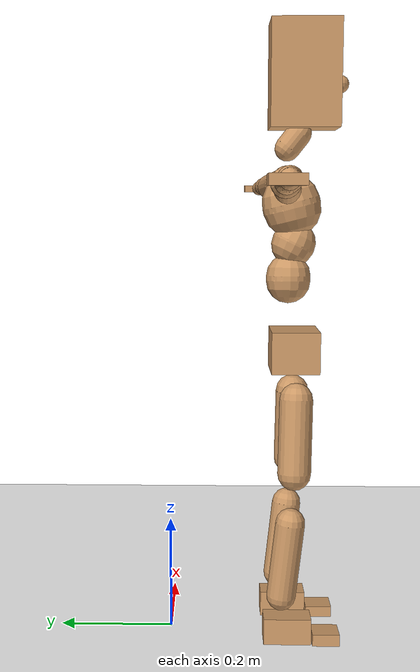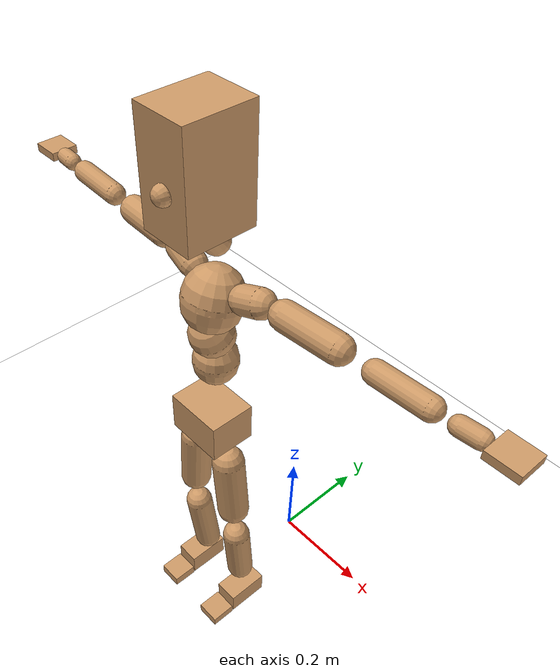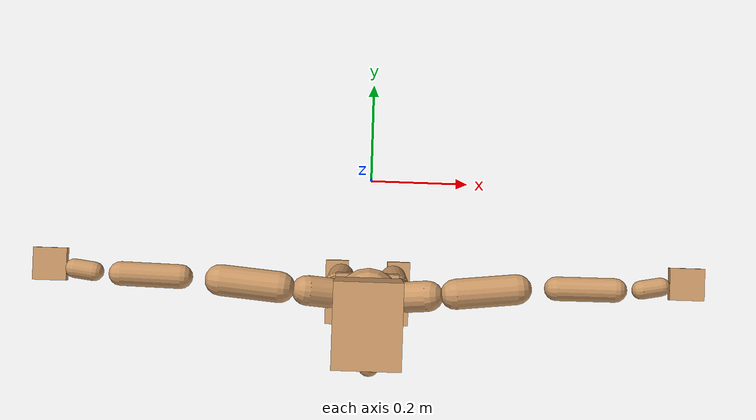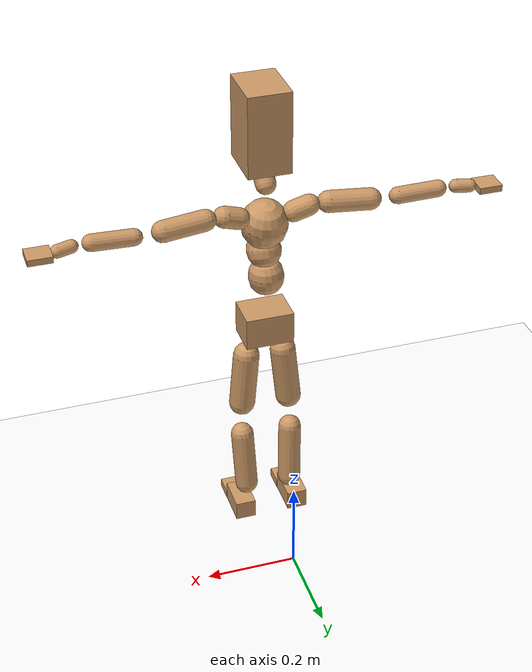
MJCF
<mujoco model="humanoid">
  <option integrator="implicitfast" />

  <visual>
    <global offwidth="1280" offheight="960" />
    <headlight active="1" ambient="0.34 0.34 0.34" diffuse="0.5 0.5 0.5" />
  </visual>

  <default>
    <joint damping="2" stiffness="2" armature="0.01" limited="true" solimplimit="0 .99 .01" />
    <geom condim="1" friction="0.7 0.005 0.0001" solimp=".99 .99 .003" solref="0.015 1" margin="0.001" rgba="0.8 0.6 .4 1" />
    <default class="smplcontact">
      <geom condim="3" friction="1. 0.005 0.0001" solref="0.015 1" solimp="0.98 0.98 0.001" priority="1" />
    </default>
    <default class="stiff_medium">
      <joint stiffness="10" />
    </default>
    <default class="stiff_medium_higher">
      <joint stiffness="50" />
    </default>
    <default class="stiff_high">
      <joint stiffness="100" />
    </default>
  </default>

  <asset>
    <texture type="skybox" builtin="gradient" rgb1="0.99 0.99 0.99" rgb2="0.608 0.828 0.892" width="100" />
    <texture builtin="flat" height="1278" mark="cross" markrgb="1 1 1" name="texgeom" random="0.01" rgb1="0.8 0.6 0.4" rgb2="0.8 0.6 0.4" type="cube" width="127" />
    <texture name="texplane" type="2d" builtin="checker" markrgb="1 1 1" rgb1="0.756 0.772 0.76" rgb2="0.6 0.6 0.6" width="100" height="100" />
    <material name="MatPlane" reflectance="0.5" texture="texplane" texrepeat="1 1" texuniform="true" />
    <material name="geom" texture="texgeom" texuniform="true" />
  </asset>

  <worldbody>
    <light name="tracking_light" pos="0 0 7" dir="0 0 -1" directional="true" cutoff="100" exponent="1" diffuse="1 1 1" specular="0.1 0.1 0.1" mode="trackcom" />
    <camera name="back" pos="0 3 2.4" xyaxes="-1 0 0 0 -1 2" mode="trackcom" />
    <camera name="side" pos="-3 0 2.4" xyaxes="0 -1 0 1 0 2" mode="trackcom" />
    <camera name="front_side" pos="-2.8 -2.8 0.8" xyaxes="0.5 -0.5 0 0.1 0.1 1" mode="trackcom" />
    <geom condim="3" name="floor" pos="0 0 0" rgba="1 1 1 1" size="100 100 .2" type="plane" material="MatPlane" />
    <body name="Pelvis" pos="-0.0018 -0.2233 0.523917" euler="90 0 0">
      <site name="Pelvis" size="0.01" />
      <freejoint name="Pelvis" />
      <geom type="box" pos="-0.0000 -0.0121 -0.0055" size="0.0539214 0.0364184 0.041866" quat="1.0000 0.0000 0.0000 0.0000" density="3165.830099" name="Pelvis" />
      <body name="L_Hip" pos="0.0390052 -0.051296 -0.00381633">
        <joint name="L_Hip_x" type="hinge" pos="0 0 0" axis="1 0 0" stiffness="10" range="-160.0 22.92" class="stiff_medium" damping="15" />
        <joint name="L_Hip_y" type="hinge" pos="0 0 0" axis="0 1 0" stiffness="10" range="-70.0 70.0" class="stiff_medium" damping="10" />
        <joint name="L_Hip_z" type="hinge" pos="0 0 0" axis="0 0 1" stiffness="10" range="-28.65 90.0" class="stiff_medium" damping="10" />
        <geom type="capsule" density="2040.816327" fromto="0.00387245 -0.0420919 -0.000505103 0.0153776 -0.16848 -0.00202041" size="0.0294397" name="L_Hip" />
        <body name="L_Knee" pos="0.01925 -0.210572 -0.00252551">
          <joint name="L_Knee_x" type="hinge" pos="0 0 0" axis="1 0 0" range="-5.16 171.89" damping="8" />
          <joint name="L_Knee_y" type="hinge" pos="0 0 0" axis="0 1 0" range="-4.58 6.88" damping="8" />
          <joint name="L_Knee_z" type="hinge" pos="0 0 0" axis="0 0 1" range="-6.88 4.58" damping="8" />
          <geom type="capsule" density="1234.567901" fromto="-0.00151531 -0.0446735 -0.00488266 -0.00611735 -0.178694 -0.0196429" size="0.0258974" name="L_Knee" />
          <body name="L_Ankle" pos="-0.00763266 -0.223368 -0.0245255">
            <joint name="L_Ankle_x" type="hinge" pos="0 0 0" axis="1 0 0" range="-45.84 45.84" class="stiff_medium" damping="6" />
            <joint name="L_Ankle_y" type="hinge" pos="0 0 0" axis="0 1 0" range="-74.48 22.92" class="stiff_medium" damping="3" />
            <joint name="L_Ankle_z" type="hinge" pos="0 0 0" axis="0 0 1" range="-4.58 4.58" class="stiff_medium" damping="6" />
            <geom type="box" pos="0.0130765 -0.0134133 0.0135816" size="0.023121 0.0222115 0.0406891" quat="1.0000 0.0000 0.0000 0.0000" density="449.071558" name="L_Ankle" class="smplcontact" />
            <body name="L_Toe" pos="0.0148163 -0.0313164 0.0669542">
              <joint name="L_Toe_x" type="hinge" pos="0 0 0" axis="1 0 0" range="-91.67 22.92" />
              <joint name="L_Toe_y" type="hinge" pos="0 0 0" axis="0 1 0" range="-4.58 4.58" />
              <joint name="L_Toe_z" type="hinge" pos="0 0 0" axis="0 0 1" range="-4.58 4.58" />
              <geom type="box" pos="-0.00168368 0.00308674 0.0139184" size="0.0228816 0.0095739 0.0237433" quat="1.0000 0.0000 0.0000 0.0000" density="423.206892" name="L_Toe" class="smplcontact" />
            </body>
          </body>
        </body>
      </body>
      <body name="R_Hip" pos="-0.0379949 -0.0507909 -0.00241327">
        <joint name="R_Hip_x" type="hinge" pos="0 0 0" axis="1 0 0" stiffness="10" range="-160.0 22.92" class="stiff_medium" damping="15" />
        <joint name="R_Hip_y" type="hinge" pos="0 0 0" axis="0 1 0" stiffness="10" range="-70.0 70.0" class="stiff_medium" damping="10" />
        <joint name="R_Hip_z" type="hinge" pos="0 0 0" axis="0 0 1" stiffness="10" range="-90.0 28.65" class="stiff_medium" damping="10" />
        <geom type="capsule" density="2040.816327" fromto="-0.00432143 -0.0429337 -0.00101021 -0.0171735 -0.171791 -0.0039847" size="0.0290089" name="R_Hip" />
        <body name="R_Knee" pos="-0.0214949 -0.214725 -0.0049949">
          <joint name="R_Knee_x" type="hinge" pos="0 0 0" axis="1 0 0" range="-5.16 171.89" damping="8" />
          <joint name="R_Knee_y" type="hinge" pos="0 0 0" axis="0 1 0" range="-6.88 4.58" damping="8" />
          <joint name="R_Knee_z" type="hinge" pos="0 0 0" axis="0 0 1" range="-4.58 6.88" damping="8" />
          <geom type="capsule" density="1234.567901" fromto="0.00179592 -0.0447296 -0.00477041 0.00707144 -0.178862 -0.0189694" size="0.0258974" name="R_Knee" />
          <body name="R_Ankle" pos="0.00886736 -0.223592 -0.0237398">
            <joint name="R_Ankle_x" type="hinge" pos="0 0 0" axis="1 0 0" range="-45.84 45.84" class="stiff_medium" damping="6" />
            <joint name="R_Ankle_y" type="hinge" pos="0 0 0" axis="0 1 0" range="-22.92 74.48" class="stiff_medium" damping="3" />
            <joint name="R_Ankle_z" type="hinge" pos="0 0 0" axis="0 0 1" range="-4.58 4.58" class="stiff_medium" damping="6" />
            <geom type="box" pos="-0.011898 -0.00976532 0.0143674" size="0.023121 0.0228816 0.0414071" quat="1.0000 0.0000 0.0000 0.0000" density="434.700981" name="R_Ankle" class="smplcontact" />
            <body name="R_Toe" pos="-0.0142551 -0.0269949 0.0691991">
              <joint name="R_Toe_x" type="hinge" pos="0 0 0" axis="1 0 0" range="-91.67 22.92" />
              <joint name="R_Toe_y" type="hinge" pos="0 0 0" axis="0 1 0" range="-4.58 4.58" />
              <joint name="R_Toe_z" type="hinge" pos="0 0 0" axis="0 0 1" range="-4.58 4.58" />
              <geom type="box" pos="0.00235715 0.00252551 0.0127398" size="0.0229295 0.0103398 0.0235997" quat="1.0000 0.0000 0.0000 0.0000" density="407.384095" name="R_Toe" class="smplcontact" />
            </body>
          </body>
        </body>
      </body>
      <body name="Torso" pos="-0.0016117 0.07027 -0.0172129">
        <joint name="Torso_x" type="hinge" pos="0 0 0" axis="1 0 0" range="-25.78 57.3" class="stiff_medium" damping="15" />
        <joint name="Torso_y" type="hinge" pos="0 0 0" axis="0 1 0" range="-57.3 57.3" class="stiff_high" damping="20" />
        <joint name="Torso_z" type="hinge" pos="0 0 0" axis="0 0 1" range="-34.38 34.38" class="stiff_high" damping="20" />
        <geom type="capsule" density="2040.816327" fromto="0.0016117 0.0391965 0.00032234 0.00193404 0.0478997 0.000386807" size="0.0387891" name="Torso" />
        <body name="Spine" pos="0.00354573 0.0871606 0.000709147">
          <joint name="Spine_x" type="hinge" pos="0 0 0" axis="1 0 0" stiffness="10" range="-25.78 57.3" class="stiff_medium" damping="15" />
          <joint name="Spine_y" type="hinge" pos="0 0 0" axis="0 1 0" stiffness="10" range="-57.3 57.3" class="stiff_high" damping="8" />
          <joint name="Spine_z" type="hinge" pos="0 0 0" axis="0 0 1" stiffness="20" range="-34.38 34.38" class="stiff_high" damping="12" />
          <geom type="capsule" density="2040.816327" fromto="0.000451275 0.0153434 0.00734934 0.000515743 0.0187602 0.00902551" size="0.038083" name="Spine" />
          <body name="Chest" pos="0.000967019 0.0341035 0.0163748">
            <joint name="Chest_x" type="hinge" pos="0 0 0" axis="1 0 0" stiffness="10" range="-25.78 57.3" class="stiff_medium" damping="15" />
            <joint name="Chest_y" type="hinge" pos="0 0 0" axis="0 1 0" stiffness="10" range="-57.3 57.3" class="stiff_high" damping="8" />
            <joint name="Chest_z" type="hinge" pos="0 0 0" axis="0 0 1" stiffness="20" range="-34.38 34.38" class="stiff_high" damping="12" />
            <geom type="capsule" density="2040.816327" fromto="-0.000580211 0.0439671 -0.0111529 -0.000644679 0.0537018 -0.0136672" size="0.0505419" name="Chest" />
            <body name="Neck" pos="-0.0018051 0.137897 -0.0276567">
              <joint name="Neck_x" type="hinge" pos="0 0 0" axis="1 0 0" range="-28.65 57.3" class="stiff_medium_higher" damping="10" />
              <joint name="Neck_y" type="hinge" pos="0 0 0" axis="0 1 0" range="-40.11 40.11" class="stiff_medium_higher" damping="10" />
              <joint name="Neck_z" type="hinge" pos="0 0 0" axis="0 0 1" range="-40.11 40.11" class="stiff_medium_higher" damping="10" />
              <geom type="capsule" density="1000" fromto="0.000644679 0.00838083 0.00664019 0.00264318 0.0335233 0.0264963" size="0.0219923" name="Neck" />
              <body name="Head" pos="0.00449245 0.0561557 0.0443198">
                <joint name="Head_x" type="hinge" pos="0 0 0" axis="1 0 0" range="-28.65 57.3" class="stiff_medium_higher" damping="2" />
                <joint name="Head_y" type="hinge" pos="0 0 0" axis="0 1 0" range="-40.11 40.11" class="stiff_medium_higher" damping="2" />
                <joint name="Head_z" type="hinge" pos="0 0 0" axis="0 0 1" range="-40.11 40.11" class="stiff_medium_higher" damping="2" />
                <geom type="box" pos="-0.00362852 0.0756806 -0.0100216" size="0.0473001 0.0900732 0.0593203" quat="1.0000 0.0000 0.0000 0.0000" density="1018.069894" name="Head" />
                <geom type="capsule" name="nose" size="0.0156106 0.0078053" pos="0 0.0604753 0.0431967" quat="1 0 0 0" mass="0" contype="0" conaffinity="0" />
              </body>
            </body>
            <body name="L_Thorax" pos="0.0468356 0.0723337 -0.0202677">
              <joint name="L_Thorax_x" type="hinge" pos="0 0 0" axis="1 0 0" range="-10.89 4.58" class="stiff_medium_higher" damping="20" />
              <joint name="L_Thorax_y" type="hinge" pos="0 0 0" axis="0 1 0" range="-28.65 17.19" class="stiff_medium_higher" damping="20" />
              <joint name="L_Thorax_z" type="hinge" pos="0 0 0" axis="0 0 1" range="-31.51 40.11" class="stiff_medium_higher" damping="20" />
              <geom type="capsule" density="1000" fromto="0.0108174 0.0036256 -0.00106985 0.0432695 0.0145024 -0.00421996" size="0.0235415" name="L_Thorax" />
              <body name="L_Shoulder" pos="0.0540868 0.018128 -0.00528981">
                <joint name="L_Shoulder_x" type="hinge" pos="0 0 0" axis="1 0 0" range="-97.4 97.4" class="stiff_medium" damping="6" />
                <joint name="L_Shoulder_y" type="hinge" pos="0 0 0" axis="0 1 0" range="-108.86 80.21" class="stiff_medium" damping="6" />
                <joint name="L_Shoulder_z" type="hinge" pos="0 0 0" axis="0 0 1" range="-97.4 85.94" class="stiff_medium" damping="6" />
                <geom type="capsule" density="1000" fromto="0.0308473 -0.00154534 -0.00326898 0.123449 -0.00606248 -0.0130759" size="0.0233608" name="L_Shoulder" />
                <body name="L_Elbow" pos="0.154296 -0.00760782 -0.0163449">
                  <joint name="L_Elbow_x" type="hinge" pos="0 0 0" axis="1 0 0" range="-17.19 4.58" damping="5" />
                  <joint name="L_Elbow_y" type="hinge" pos="0 0 0" axis="0 1 0" range="-180.0 17.19" damping="5" />
                  <joint name="L_Elbow_z" type="hinge" pos="0 0 0" axis="0 0 1" range="-100.84 4.58" damping="5" />
                  <geom type="capsule" density="1000" fromto="0.0295992 0.00106985 -0.000118872 0.118516 0.0042794 -0.000534925" size="0.0183" name="L_Elbow" />
                  <body name="L_Wrist" pos="0.148115 0.00534925 -0.000713233">
                    <joint name="L_Wrist_x" type="hinge" pos="0 0 0" axis="1 0 0" range="-180.0 22.92" />
                    <joint name="L_Wrist_y" type="hinge" pos="0 0 0" axis="0 1 0" range="-17.19 17.19" />
                    <joint name="L_Wrist_z" type="hinge" pos="0 0 0" axis="0 0 1" range="-22.92 22.92" />
                    <geom type="capsule" density="1000" fromto="0.00998526 -0.000950977 -0.00178308 0.039941 -0.00386335 -0.00713233" size="0.0143689" name="L_Wrist" class="smplcontact" />
                    <body name="L_Hand" pos="0.0499263 -0.00487376 -0.00885598">
                      <joint name="L_Hand_x" type="hinge" pos="0 0 0" axis="1 0 0" range="-17.19 17.19" />
                      <joint name="L_Hand_y" type="hinge" pos="0 0 0" axis="0 1 0" range="-51.57 51.57" />
                      <joint name="L_Hand_z" type="hinge" pos="0 0 0" axis="0 0 1" range="-91.67 91.67" />
                      <geom type="box" pos="0.029302 0.000594361 -0.00344729" size="0.0264334 0.00713927 0.0243097" quat="1.0000 0.0000 0.0000 0.0000" density="400.552564" name="L_Hand" class="smplcontact" />
                    </body>
                  </body>
                </body>
              </body>
            </body>
            <body name="R_Thorax" pos="-0.0486187 0.0706101 -0.0229423">
              <joint name="R_Thorax_x" type="hinge" pos="0 0 0" axis="1 0 0" range="-10.89 4.58" class="stiff_medium_higher" damping="20" />
              <joint name="R_Thorax_y" type="hinge" pos="0 0 0" axis="0 1 0" range="-17.19 28.65" class="stiff_medium_higher" damping="20" />
              <joint name="R_Thorax_z" type="hinge" pos="0 0 0" axis="0 0 1" range="-40.11 31.51" class="stiff_medium_higher" damping="20" />
              <geom type="capsule" density="1000" fromto="-0.0114117 0.00386335 -0.00106985 -0.0456469 0.0154534 -0.00433883" size="0.0230897" name="R_Thorax" />
              <body name="R_Shoulder" pos="-0.0570586 0.0193762 -0.00540868">
                <joint name="R_Shoulder_x" type="hinge" pos="0 0 0" axis="1 0 0" range="-97.4 97.4" class="stiff_medium" damping="6" />
                <joint name="R_Shoulder_y" type="hinge" pos="0 0 0" axis="0 1 0" range="-80.21 108.86" class="stiff_medium" damping="6" />
                <joint name="R_Shoulder_z" type="hinge" pos="0 0 0" axis="0 0 1" range="-85.94 97.4" class="stiff_medium" damping="6" />
                <geom type="capsule" density="1000" fromto="-0.0301341 -0.00160477 -0.00255575 -0.120655 -0.00635966 -0.0101636" size="0.0239934" name="R_Shoulder" />
                <body name="R_Elbow" pos="-0.150789 -0.007905 -0.0127193">
                  <joint name="R_Elbow_x" type="hinge" pos="0 0 0" axis="1 0 0" range="-17.19 4.58" damping="5" />
                  <joint name="R_Elbow_y" type="hinge" pos="0 0 0" axis="0 1 0" range="-17.19 180.0" damping="5" />
                  <joint name="R_Elbow_z" type="hinge" pos="0 0 0" axis="0 0 1" range="-4.58 100.84" damping="5" />
                  <geom type="capsule" density="1000" fromto="-0.0303718 0.000950977 -0.000653797 -0.121368 0.00368504 -0.00261519" size="0.0184356" name="R_Elbow" />
                  <body name="R_Wrist" pos="-0.15174 0.00463601 -0.00332842">
                    <joint name="R_Wrist_x" type="hinge" pos="0 0 0" axis="1 0 0" range="-180.0 22.92" />
                    <joint name="R_Wrist_y" type="hinge" pos="0 0 0" axis="0 1 0" range="-17.19 17.19" />
                    <joint name="R_Wrist_z" type="hinge" pos="0 0 0" axis="0 0 1" range="-22.92 22.92" />
                    <geom type="capsule" density="1000" fromto="-0.0100447 -0.000713233 -0.00124816 -0.0402382 -0.00291237 -0.00493319" size="0.0147304" name="R_Wrist" class="smplcontact" />
                    <body name="R_Hand" pos="-0.0502829 -0.0036256 -0.00612192">
                      <joint name="R_Hand_x" type="hinge" pos="0 0 0" axis="1 0 0" range="-17.19 17.19" />
                      <joint name="R_Hand_y" type="hinge" pos="0 0 0" axis="0 1 0" range="-51.57 51.57" />
                      <joint name="R_Hand_z" type="hinge" pos="0 0 0" axis="0 0 1" range="-91.67 91.67" />
                      <geom type="box" pos="-0.0274595 -0.000534925 -0.00469545" size="0.0257104 0.00741038 0.0246711" quat="1.0000 0.0000 0.0000 0.0000" density="403.679611" name="R_Hand" class="smplcontact" />
                    </body>
                  </body>
                </body>
              </body>
            </body>
          </body>
        </body>
      </body>
    </body>
  </worldbody>
  <actuator>
    <general name="L_Hip_x" joint="L_Hip_x" biastype="affine" gainprm="287.33006409732246" biasprm="-215.3247604770444 -180 -2.0" ctrllimited="true" ctrlrange="-1 1" forcerange="-360 360" />
    <general name="L_Hip_y" joint="L_Hip_y" biastype="affine" gainprm="219.9114857512855" biasprm="0.0 -180 -2.0" ctrllimited="true" ctrlrange="-1 1" forcerange="-360 360" />
    <general name="L_Hip_z" joint="L_Hip_z" biastype="affine" gainprm="186.3749841742145" biasprm="96.3683546488669 -180 -2.0" ctrllimited="true" ctrlrange="-1 1" forcerange="-360 360" />
    <general name="L_Knee_x" joint="L_Knee_x" biastype="affine" gainprm="278.10948965903646" biasprm="261.8988715665131 -180 -2.0" ctrllimited="true" ctrlrange="-1 1" forcerange="-360 360" />
    <general name="L_Knee_y" joint="L_Knee_y" biastype="affine" gainprm="18.001325905069514" biasprm="3.612831551628262 -180 -2.0" ctrllimited="true" ctrlrange="-1 1" forcerange="-360 360" />
    <general name="L_Knee_z" joint="L_Knee_z" biastype="affine" gainprm="18.001325905069514" biasprm="-3.612831551628262 -180 -2.0" ctrllimited="true" ctrlrange="-1 1" forcerange="-360 360" />
    <general name="L_Ankle_x" joint="L_Ankle_x" biastype="affine" gainprm="72.00530362027807" biasprm="0.0 -90 -2.0" ctrllimited="true" ctrlrange="-1 1" forcerange="-180 180" />
    <general name="L_Ankle_y" joint="L_Ankle_y" biastype="affine" gainprm="76.49778111491148" biasprm="-40.49512930477244 -90 -2.0" ctrllimited="true" ctrlrange="-1 1" forcerange="-180 180" />
    <general name="L_Ankle_z" joint="L_Ankle_z" biastype="affine" gainprm="7.1942471767206255" biasprm="0.0 -90 -2.0" ctrllimited="true" ctrlrange="-1 1" forcerange="-180 180" />
    <general name="L_Toe_x" joint="L_Toe_x" biastype="affine" gainprm="71.99902043497087" biasprm="-43.19689898685965 -72 -0.8" ctrllimited="true" ctrlrange="-1 1" forcerange="-144 144" />
    <general name="L_Toe_y" joint="L_Toe_y" biastype="affine" gainprm="5.755397741376501" biasprm="0.0 -72 -0.8" ctrllimited="true" ctrlrange="-1 1" forcerange="-144 144" />
    <general name="L_Toe_z" joint="L_Toe_z" biastype="affine" gainprm="5.755397741376501" biasprm="0.0 -72 -0.8" ctrllimited="true" ctrlrange="-1 1" forcerange="-144 144" />
    <general name="R_Hip_x" joint="R_Hip_x" biastype="affine" gainprm="287.33006409732246" biasprm="-215.3247604770444 -180 -2.0" ctrllimited="true" ctrlrange="-1 1" forcerange="-360 360" />
    <general name="R_Hip_y" joint="R_Hip_y" biastype="affine" gainprm="219.9114857512855" biasprm="0.0 -180 -2.0" ctrllimited="true" ctrlrange="-1 1" forcerange="-360 360" />
    <general name="R_Hip_z" joint="R_Hip_z" biastype="affine" gainprm="186.3749841742145" biasprm="-96.3683546488669 -180 -2.0" ctrllimited="true" ctrlrange="-1 1" forcerange="-360 360" />
    <general name="R_Knee_x" joint="R_Knee_x" biastype="affine" gainprm="278.10948965903646" biasprm="261.8988715665131 -180 -2.0" ctrllimited="true" ctrlrange="-1 1" forcerange="-360 360" />
    <general name="R_Knee_y" joint="R_Knee_y" biastype="affine" gainprm="18.001325905069514" biasprm="-3.612831551628262 -180 -2.0" ctrllimited="true" ctrlrange="-1 1" forcerange="-360 360" />
    <general name="R_Knee_z" joint="R_Knee_z" biastype="affine" gainprm="18.001325905069514" biasprm="3.612831551628262 -180 -2.0" ctrllimited="true" ctrlrange="-1 1" forcerange="-360 360" />
    <general name="R_Ankle_x" joint="R_Ankle_x" biastype="affine" gainprm="72.00530362027807" biasprm="0.0 -90 -2.0" ctrllimited="true" ctrlrange="-1 1" forcerange="-180 180" />
    <general name="R_Ankle_y" joint="R_Ankle_y" biastype="affine" gainprm="76.49778111491148" biasprm="40.49512930477244 -90 -2.0" ctrllimited="true" ctrlrange="-1 1" forcerange="-180 180" />
    <general name="R_Ankle_z" joint="R_Ankle_z" biastype="affine" gainprm="7.1942471767206255" biasprm="0.0 -90 -2.0" ctrllimited="true" ctrlrange="-1 1" forcerange="-180 180" />
    <general name="R_Toe_x" joint="R_Toe_x" biastype="affine" gainprm="71.99902043497087" biasprm="-43.19689898685965 -72 -0.8" ctrllimited="true" ctrlrange="-1 1" forcerange="-144 144" />
    <general name="R_Toe_y" joint="R_Toe_y" biastype="affine" gainprm="5.755397741376501" biasprm="0.0 -72 -0.8" ctrllimited="true" ctrlrange="-1 1" forcerange="-144 144" />
    <general name="R_Toe_z" joint="R_Toe_z" biastype="affine" gainprm="5.755397741376501" biasprm="0.0 -72 -0.8" ctrllimited="true" ctrlrange="-1 1" forcerange="-144 144" />
    <general name="Torso_x" joint="Torso_x" biastype="affine" gainprm="174.00234510682668" biasprm="66.0153336274335 -240 -4.0" ctrllimited="true" ctrlrange="-1 1" forcerange="-360 360" />
    <general name="Torso_y" joint="Torso_y" biastype="affine" gainprm="240.0176787342602" biasprm="0.0 -240 -4.0" ctrllimited="true" ctrlrange="-1 1" forcerange="-360 360" />
    <general name="Torso_z" joint="Torso_z" biastype="affine" gainprm="144.01060724055614" biasprm="0.0 -240 -4.0" ctrllimited="true" ctrlrange="-1 1" forcerange="-360 360" />
    <general name="Spine_x" joint="Spine_x" biastype="affine" gainprm="174.00234510682668" biasprm="66.0153336274335 -240 -4.0" ctrllimited="true" ctrlrange="-1 1" forcerange="-360 360" />
    <general name="Spine_y" joint="Spine_y" biastype="affine" gainprm="240.0176787342602" biasprm="0.0 -240 -4.0" ctrllimited="true" ctrlrange="-1 1" forcerange="-360 360" />
    <general name="Spine_z" joint="Spine_z" biastype="affine" gainprm="144.01060724055614" biasprm="0.0 -240 -4.0" ctrllimited="true" ctrlrange="-1 1" forcerange="-360 360" />
    <general name="Chest_x" joint="Chest_x" biastype="affine" gainprm="174.00234510682668" biasprm="66.0153336274335 -240 -4.0" ctrllimited="true" ctrlrange="-1 1" forcerange="-360 360" />
    <general name="Chest_y" joint="Chest_y" biastype="affine" gainprm="240.0176787342602" biasprm="0.0 -240 -4.0" ctrllimited="true" ctrlrange="-1 1" forcerange="-360 360" />
    <general name="Chest_z" joint="Chest_z" biastype="affine" gainprm="144.01060724055614" biasprm="0.0 -240 -4.0" ctrllimited="true" ctrlrange="-1 1" forcerange="-360 360" />
    <general name="Neck_x" joint="Neck_x" biastype="affine" gainprm="27.00198885760427" biasprm="9.000662952534757 -36 -0.8" ctrllimited="true" ctrlrange="-1 1" forcerange="-72 72" />
    <general name="Neck_y" joint="Neck_y" biastype="affine" gainprm="25.20185626709732" biasprm="0.0 -36 -0.8" ctrllimited="true" ctrlrange="-1 1" forcerange="-72 72" />
    <general name="Neck_z" joint="Neck_z" biastype="affine" gainprm="25.20185626709732" biasprm="0.0 -36 -0.8" ctrllimited="true" ctrlrange="-1 1" forcerange="-72 72" />
    <general name="Head_x" joint="Head_x" biastype="affine" gainprm="18.001325905069514" biasprm="6.000441968356505 -24 -0.8" ctrllimited="true" ctrlrange="-1 1" forcerange="-48 48" />
    <general name="Head_y" joint="Head_y" biastype="affine" gainprm="16.801237511398213" biasprm="0.0 -24 -0.8" ctrllimited="true" ctrlrange="-1 1" forcerange="-48 48" />
    <general name="Head_z" joint="Head_z" biastype="affine" gainprm="16.801237511398213" biasprm="0.0 -24 -0.8" ctrllimited="true" ctrlrange="-1 1" forcerange="-48 48" />
    <general name="L_Thorax_x" joint="L_Thorax_x" biastype="affine" gainprm="16.200146117011364" biasprm="-6.6078165480505335 -120 -1.6" ctrllimited="true" ctrlrange="-1 1" forcerange="-240 240" />
    <general name="L_Thorax_y" joint="L_Thorax_y" biastype="affine" gainprm="48.00353574685204" biasprm="-12.00088393671301 -120 -1.6" ctrllimited="true" ctrlrange="-1 1" forcerange="-240 240" />
    <general name="L_Thorax_z" joint="L_Thorax_z" biastype="affine" gainprm="75.00028861670033" biasprm="9.00589894029074 -120 -1.6" ctrllimited="true" ctrlrange="-1 1" forcerange="-240 240" />
    <general name="L_Shoulder_x" joint="L_Shoulder_x" biastype="affine" gainprm="81.5976331892389" biasprm="0.0 -48 -1.6" ctrllimited="true" ctrlrange="-1 1" forcerange="-96 96" />
    <general name="L_Shoulder_y" joint="L_Shoulder_y" biastype="affine" gainprm="79.19745640189629" biasprm="-12.00088393671301 -48 -1.6" ctrllimited="true" ctrlrange="-1 1" forcerange="-96 96" />
    <general name="L_Shoulder_z" joint="L_Shoulder_z" biastype="affine" gainprm="76.79727961455369" biasprm="-4.800353574685214 -48 -1.6" ctrllimited="true" ctrlrange="-1 1" forcerange="-96 96" />
    <general name="L_Elbow_x" joint="L_Elbow_x" biastype="affine" gainprm="13.67849441372996" biasprm="-7.923096672353461 -72 -0.8" ctrllimited="true" ctrlrange="-1 1" forcerange="-144 144" />
    <general name="L_Elbow_y" joint="L_Elbow_y" biastype="affine" gainprm="123.89813107227425" biasprm="-102.29653998619085 -72 -0.8" ctrllimited="true" ctrlrange="-1 1" forcerange="-144 144" />
    <general name="L_Elbow_z" joint="L_Elbow_z" biastype="affine" gainprm="66.23733950828719" biasprm="-60.4819417669107 -72 -0.8" ctrllimited="true" ctrlrange="-1 1" forcerange="-144 144" />
    <general name="L_Wrist_x" joint="L_Wrist_x" biastype="affine" gainprm="21.24973270888136" biasprm="-16.449379134196157 -12 -0.8" ctrllimited="true" ctrlrange="-1 1" forcerange="-24 24" />
    <general name="L_Wrist_y" joint="L_Wrist_y" biastype="affine" gainprm="3.6002651810139037" biasprm="0.0 -12 -0.8" ctrllimited="true" ctrlrange="-1 1" forcerange="-24 24" />
    <general name="L_Wrist_z" joint="L_Wrist_z" biastype="affine" gainprm="4.800353574685205" biasprm="0.0 -12 -0.8" ctrllimited="true" ctrlrange="-1 1" forcerange="-24 24" />
    <general name="L_Hand_x" joint="L_Hand_x" biastype="affine" gainprm="3.6002651810139037" biasprm="0.0 -12 -0.8" ctrllimited="true" ctrlrange="-1 1" forcerange="-24 24" />
    <general name="L_Hand_y" joint="L_Hand_y" biastype="affine" gainprm="10.800795543041708" biasprm="0.0 -12 -0.8" ctrllimited="true" ctrlrange="-1 1" forcerange="-24 24" />
    <general name="L_Hand_z" joint="L_Hand_z" biastype="affine" gainprm="19.199319903638422" biasprm="0.0 -12 -0.8" ctrllimited="true" ctrlrange="-1 1" forcerange="-24 24" />
    <general name="R_Thorax_x" joint="R_Thorax_x" biastype="affine" gainprm="16.200146117011364" biasprm="-6.6078165480505335 -120 -1.6" ctrllimited="true" ctrlrange="-1 1" forcerange="-240 240" />
    <general name="R_Thorax_y" joint="R_Thorax_y" biastype="affine" gainprm="48.00353574685204" biasprm="12.000883936713002 -120 -1.6" ctrllimited="true" ctrlrange="-1 1" forcerange="-240 240" />
    <general name="R_Thorax_z" joint="R_Thorax_z" biastype="affine" gainprm="75.00028861670033" biasprm="-9.00589894029074 -120 -1.6" ctrllimited="true" ctrlrange="-1 1" forcerange="-240 240" />
    <general name="R_Shoulder_x" joint="R_Shoulder_x" biastype="affine" gainprm="81.5976331892389" biasprm="0.0 -48 -1.6" ctrllimited="true" ctrlrange="-1 1" forcerange="-96 96" />
    <general name="R_Shoulder_y" joint="R_Shoulder_y" biastype="affine" gainprm="79.19745640189629" biasprm="12.00088393671301 -48 -1.6" ctrllimited="true" ctrlrange="-1 1" forcerange="-96 96" />
    <general name="R_Shoulder_z" joint="R_Shoulder_z" biastype="affine" gainprm="76.79727961455369" biasprm="4.800353574685204 -48 -1.6" ctrllimited="true" ctrlrange="-1 1" forcerange="-96 96" />
    <general name="R_Elbow_x" joint="R_Elbow_x" biastype="affine" gainprm="13.67849441372996" biasprm="-7.923096672353461 -72 -0.8" ctrllimited="true" ctrlrange="-1 1" forcerange="-144 144" />
    <general name="R_Elbow_y" joint="R_Elbow_y" biastype="affine" gainprm="123.89813107227425" biasprm="102.29653998619085 -72 -0.8" ctrllimited="true" ctrlrange="-1 1" forcerange="-144 144" />
    <general name="R_Elbow_z" joint="R_Elbow_z" biastype="affine" gainprm="66.23733950828719" biasprm="60.481941766910694 -72 -0.8" ctrllimited="true" ctrlrange="-1 1" forcerange="-144 144" />
    <general name="R_Wrist_x" joint="R_Wrist_x" biastype="affine" gainprm="21.24973270888136" biasprm="-16.449379134196157 -12 -0.8" ctrllimited="true" ctrlrange="-1 1" forcerange="-24 24" />
    <general name="R_Wrist_y" joint="R_Wrist_y" biastype="affine" gainprm="3.6002651810139037" biasprm="0.0 -12 -0.8" ctrllimited="true" ctrlrange="-1 1" forcerange="-24 24" />
    <general name="R_Wrist_z" joint="R_Wrist_z" biastype="affine" gainprm="4.800353574685205" biasprm="0.0 -12 -0.8" ctrllimited="true" ctrlrange="-1 1" forcerange="-24 24" />
    <general name="R_Hand_x" joint="R_Hand_x" biastype="affine" gainprm="3.6002651810139037" biasprm="0.0 -12 -0.8" ctrllimited="true" ctrlrange="-1 1" forcerange="-24 24" />
    <general name="R_Hand_y" joint="R_Hand_y" biastype="affine" gainprm="10.800795543041708" biasprm="0.0 -12 -0.8" ctrllimited="true" ctrlrange="-1 1" forcerange="-24 24" />
    <general name="R_Hand_z" joint="R_Hand_z" biastype="affine" gainprm="19.199319903638422" biasprm="0.0 -12 -0.8" ctrllimited="true" ctrlrange="-1 1" forcerange="-24 24" />
  </actuator>
  <contact>
    <exclude body1="Torso" body2="Chest" />
    <exclude body1="Head" body2="Chest" />
    <exclude body1="R_Knee" body2="R_Toe" />
    <exclude body1="R_Knee" body2="L_Ankle" />
    <exclude body1="R_Knee" body2="L_Toe" />
    <exclude body1="L_Knee" body2="L_Toe" />
    <exclude body1="L_Knee" body2="R_Ankle" />
    <exclude body1="L_Knee" body2="R_Toe" />
    <exclude body1="L_Shoulder" body2="Chest" />
    <exclude body1="R_Shoulder" body2="Chest" />
  </contact>
  <sensor>
    <framelinvel name="sensor_Pelvis_framelinvel" objtype="xbody" objname="Pelvis" />
    <framelinvel name="sensor_L_Hip_framelinvel" objtype="xbody" objname="L_Hip" />
    <framelinvel name="sensor_L_Knee_framelinvel" objtype="xbody" objname="L_Knee" />
    <framelinvel name="sensor_L_Ankle_framelinvel" objtype="xbody" objname="L_Ankle" />
    <framelinvel name="sensor_L_Toe_framelinvel" objtype="xbody" objname="L_Toe" />
    <framelinvel name="sensor_R_Hip_framelinvel" objtype="xbody" objname="R_Hip" />
    <framelinvel name="sensor_R_Knee_framelinvel" objtype="xbody" objname="R_Knee" />
    <framelinvel name="sensor_R_Ankle_framelinvel" objtype="xbody" objname="R_Ankle" />
    <framelinvel name="sensor_R_Toe_framelinvel" objtype="xbody" objname="R_Toe" />
    <framelinvel name="sensor_Torso_framelinvel" objtype="xbody" objname="Torso" />
    <framelinvel name="sensor_Spine_framelinvel" objtype="xbody" objname="Spine" />
    <framelinvel name="sensor_Chest_framelinvel" objtype="xbody" objname="Chest" />
    <framelinvel name="sensor_Neck_framelinvel" objtype="xbody" objname="Neck" />
    <framelinvel name="sensor_Head_framelinvel" objtype="xbody" objname="Head" />
    <framelinvel name="sensor_L_Thorax_framelinvel" objtype="xbody" objname="L_Thorax" />
    <framelinvel name="sensor_L_Shoulder_framelinvel" objtype="xbody" objname="L_Shoulder" />
    <framelinvel name="sensor_L_Elbow_framelinvel" objtype="xbody" objname="L_Elbow" />
    <framelinvel name="sensor_L_Wrist_framelinvel" objtype="xbody" objname="L_Wrist" />
    <framelinvel name="sensor_L_Hand_framelinvel" objtype="xbody" objname="L_Hand" />
    <framelinvel name="sensor_R_Thorax_framelinvel" objtype="xbody" objname="R_Thorax" />
    <framelinvel name="sensor_R_Shoulder_framelinvel" objtype="xbody" objname="R_Shoulder" />
    <framelinvel name="sensor_R_Elbow_framelinvel" objtype="xbody" objname="R_Elbow" />
    <framelinvel name="sensor_R_Wrist_framelinvel" objtype="xbody" objname="R_Wrist" />
    <framelinvel name="sensor_R_Hand_framelinvel" objtype="xbody" objname="R_Hand" />
    <frameangvel name="sensor_Pelvis_frameangvel" objtype="xbody" objname="Pelvis" />
    <frameangvel name="sensor_L_Hip_frameangvel" objtype="xbody" objname="L_Hip" />
    <frameangvel name="sensor_L_Knee_frameangvel" objtype="xbody" objname="L_Knee" />
    <frameangvel name="sensor_L_Ankle_frameangvel" objtype="xbody" objname="L_Ankle" />
    <frameangvel name="sensor_L_Toe_frameangvel" objtype="xbody" objname="L_Toe" />
    <frameangvel name="sensor_R_Hip_frameangvel" objtype="xbody" objname="R_Hip" />
    <frameangvel name="sensor_R_Knee_frameangvel" objtype="xbody" objname="R_Knee" />
    <frameangvel name="sensor_R_Ankle_frameangvel" objtype="xbody" objname="R_Ankle" />
    <frameangvel name="sensor_R_Toe_frameangvel" objtype="xbody" objname="R_Toe" />
    <frameangvel name="sensor_Torso_frameangvel" objtype="xbody" objname="Torso" />
    <frameangvel name="sensor_Spine_frameangvel" objtype="xbody" objname="Spine" />
    <frameangvel name="sensor_Chest_frameangvel" objtype="xbody" objname="Chest" />
    <frameangvel name="sensor_Neck_frameangvel" objtype="xbody" objname="Neck" />
    <frameangvel name="sensor_Head_frameangvel" objtype="xbody" objname="Head" />
    <frameangvel name="sensor_L_Thorax_frameangvel" objtype="xbody" objname="L_Thorax" />
    <frameangvel name="sensor_L_Shoulder_frameangvel" objtype="xbody" objname="L_Shoulder" />
    <frameangvel name="sensor_L_Elbow_frameangvel" objtype="xbody" objname="L_Elbow" />
    <frameangvel name="sensor_L_Wrist_frameangvel" objtype="xbody" objname="L_Wrist" />
    <frameangvel name="sensor_L_Hand_frameangvel" objtype="xbody" objname="L_Hand" />
    <frameangvel name="sensor_R_Thorax_frameangvel" objtype="xbody" objname="R_Thorax" />
    <frameangvel name="sensor_R_Shoulder_frameangvel" objtype="xbody" objname="R_Shoulder" />
    <frameangvel name="sensor_R_Elbow_frameangvel" objtype="xbody" objname="R_Elbow" />
    <frameangvel name="sensor_R_Wrist_frameangvel" objtype="xbody" objname="R_Wrist" />
    <frameangvel name="sensor_R_Hand_frameangvel" objtype="xbody" objname="R_Hand" />
    <subtreelinvel name="Chest_subtreelinvel" body="Chest" />
    <gyro name="Pelvis_gyro" site="Pelvis" />
  </sensor>
</mujoco>
